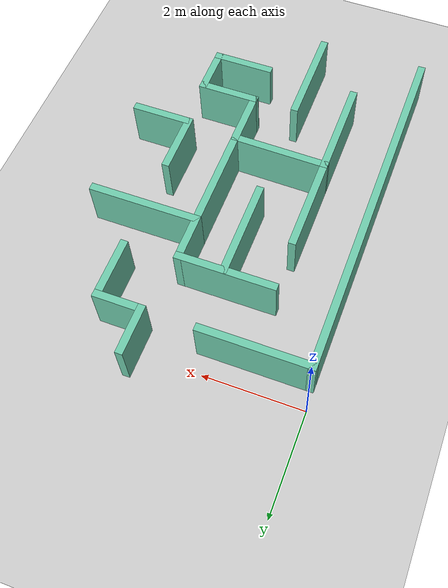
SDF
<sdf version="1.7">
 <world name="default">
  <model name="ground_plane">
   <static>1</static>
   <link name="link">
    <collision name="collision">
     <geometry><plane><normal>0 0 1</normal><size>100 100</size></plane></geometry>
     <surface><friction><ode><mu>100</mu><mu2>50</mu2></ode></friction></surface>
    </collision>
    <visual name="visual">
     <cast_shadows>0</cast_shadows>
     <geometry><plane><normal>0 0 1</normal><size>100 100</size></plane></geometry>
     <material>
      <script><uri>file://media/materials/scripts/gazebo.material</uri><name>Gazebo/Grey</name></script>
     </material>
    </visual>
   </link>
  </model>
  <model name="maze">
   <link name="Wall_196">
    <pose>0.425 -5.05 0 0 -0 3.14159</pose>
    <visual name="Wall_196_Visual">
     <pose>0 0 0.5 0 -0 0</pose>
     <geometry><box><size>7.25 0.15 1</size></box></geometry>
     <material>
      <script><uri>file://media/materials/scripts/gazebo.material</uri><name>Gazebo/Grey</name></script>
      <ambient>0.435294 0.796078 0.67451 1</ambient>
      <shader type="pixel"/>
     </material>
     <meta><layer>0</layer></meta>
    </visual>
    <collision name="Wall_196_Collision">
     <pose>0 0 0.5 0 -0 0</pose>
     <geometry><box><size>7.25 0.15 1</size></box></geometry>
     <surface>
      <friction>
       <ode><mu>1</mu><mu2>1</mu2><fdir1>0 0 0</fdir1><slip1>0</slip1><slip2>0</slip2></ode>
       <torsional>
        <coefficient>1</coefficient>
        <patch_radius>0</patch_radius>
        <surface_radius>0</surface_radius>
        <use_patch_radius>1</use_patch_radius>
        <ode><slip>0</slip></ode>
       </torsional>
      </friction>
      <bounce><restitution_coefficient>0</restitution_coefficient><threshold>1e+06</threshold></bounce>
      <contact>
       <collide_without_contact>0</collide_without_contact>
       <collide_without_contact_bitmask>1</collide_without_contact_bitmask>
       <collide_bitmask>1</collide_bitmask>
       <ode>
        <soft_cfm>0</soft_cfm>
        <soft_erp>0.2</soft_erp>
        <kp>1e+13</kp>
        <kd>1</kd>
        <max_vel>0.01</max_vel>
        <min_depth>0</min_depth>
       </ode>
       <bullet>
        <split_impulse>1</split_impulse>
        <split_impulse_penetration_threshold>-0.01</split_impulse_penetration_threshold>
        <soft_cfm>0</soft_cfm>
        <soft_erp>0.2</soft_erp>
        <kp>1e+13</kp>
        <kd>1</kd>
       </bullet>
      </contact>
     </surface>
    </collision>
   </link>
   <link name="Wall_231">
    <pose>1.052 -0.469 0 0 0 -1.5708</pose>
    <visual name="Wall_231_Visual">
     <pose>0 0 0.5 0 -0 0</pose>
     <geometry><box><size>1.25 0.15 1</size></box></geometry>
     <material>
      <script><uri>file://media/materials/scripts/gazebo.material</uri><name>Gazebo/Grey</name></script>
      <ambient>0.435294 0.796078 0.67451 1</ambient>
      <shader type="pixel"/>
     </material>
     <meta><layer>0</layer></meta>
    </visual>
    <collision name="Wall_231_Collision">
     <pose>0 0 0.5 0 -0 0</pose>
     <geometry><box><size>1.25 0.15 1</size></box></geometry>
     <surface>
      <friction>
       <ode><mu>1</mu><mu2>1</mu2><fdir1>0 0 0</fdir1><slip1>0</slip1><slip2>0</slip2></ode>
       <torsional>
        <coefficient>1</coefficient>
        <patch_radius>0</patch_radius>
        <surface_radius>0</surface_radius>
        <use_patch_radius>1</use_patch_radius>
        <ode><slip>0</slip></ode>
       </torsional>
      </friction>
      <bounce><restitution_coefficient>0</restitution_coefficient><threshold>1e+06</threshold></bounce>
      <contact>
       <collide_without_contact>0</collide_without_contact>
       <collide_without_contact_bitmask>1</collide_without_contact_bitmask>
       <collide_bitmask>1</collide_bitmask>
       <ode>
        <soft_cfm>0</soft_cfm>
        <soft_erp>0.2</soft_erp>
        <kp>1e+13</kp>
        <kd>1</kd>
        <max_vel>0.01</max_vel>
        <min_depth>0</min_depth>
       </ode>
       <bullet>
        <split_impulse>1</split_impulse>
        <split_impulse_penetration_threshold>-0.01</split_impulse_penetration_threshold>
        <soft_cfm>0</soft_cfm>
        <soft_erp>0.2</soft_erp>
        <kp>1e+13</kp>
        <kd>1</kd>
       </bullet>
      </contact>
     </surface>
    </collision>
   </link>
   <link name="Wall_232">
    <pose>0.502 -1.019 0 0 -0 3.14159</pose>
    <visual name="Wall_232_Visual">
     <pose>0 0 0.5 0 -0 0</pose>
     <geometry><box><size>1.25 0.15 1</size></box></geometry>
     <material>
      <script><uri>file://media/materials/scripts/gazebo.material</uri><name>Gazebo/Grey</name></script>
      <ambient>0.435294 0.796078 0.67451 1</ambient>
      <shader type="pixel"/>
     </material>
     <meta><layer>0</layer></meta>
    </visual>
    <collision name="Wall_232_Collision">
     <pose>0 0 0.5 0 -0 0</pose>
     <geometry><box><size>1.25 0.15 1</size></box></geometry>
     <surface>
      <friction>
       <ode><mu>1</mu><mu2>1</mu2><fdir1>0 0 0</fdir1><slip1>0</slip1><slip2>0</slip2></ode>
       <torsional>
        <coefficient>1</coefficient>
        <patch_radius>0</patch_radius>
        <surface_radius>0</surface_radius>
        <use_patch_radius>1</use_patch_radius>
        <ode><slip>0</slip></ode>
       </torsional>
      </friction>
      <bounce><restitution_coefficient>0</restitution_coefficient><threshold>1e+06</threshold></bounce>
      <contact>
       <collide_without_contact>0</collide_without_contact>
       <collide_without_contact_bitmask>1</collide_without_contact_bitmask>
       <collide_bitmask>1</collide_bitmask>
       <ode>
        <soft_cfm>0</soft_cfm>
        <soft_erp>0.2</soft_erp>
        <kp>1e+13</kp>
        <kd>1</kd>
        <max_vel>0.01</max_vel>
        <min_depth>0</min_depth>
       </ode>
       <bullet>
        <split_impulse>1</split_impulse>
        <split_impulse_penetration_threshold>-0.01</split_impulse_penetration_threshold>
        <soft_cfm>0</soft_cfm>
        <soft_erp>0.2</soft_erp>
        <kp>1e+13</kp>
        <kd>1</kd>
       </bullet>
      </contact>
     </surface>
    </collision>
   </link>
   <link name="Wall_234">
    <pose>-1.056 -1.002 0 0 0 -1.5708</pose>
    <visual name="Wall_234_Visual">
     <pose>0 0 0.5 0 -0 0</pose>
     <geometry><box><size>2.25 0.15 1</size></box></geometry>
     <material>
      <script><uri>file://media/materials/scripts/gazebo.material</uri><name>Gazebo/Grey</name></script>
      <ambient>0.435294 0.796078 0.67451 1</ambient>
      <shader type="pixel"/>
     </material>
     <meta><layer>0</layer></meta>
    </visual>
    <collision name="Wall_234_Collision">
     <pose>0 0 0.5 0 -0 0</pose>
     <geometry><box><size>2.25 0.15 1</size></box></geometry>
     <surface>
      <friction>
       <ode><mu>1</mu><mu2>1</mu2><fdir1>0 0 0</fdir1><slip1>0</slip1><slip2>0</slip2></ode>
       <torsional>
        <coefficient>1</coefficient>
        <patch_radius>0</patch_radius>
        <surface_radius>0</surface_radius>
        <use_patch_radius>1</use_patch_radius>
        <ode><slip>0</slip></ode>
       </torsional>
      </friction>
      <bounce><restitution_coefficient>0</restitution_coefficient><threshold>1e+06</threshold></bounce>
      <contact>
       <collide_without_contact>0</collide_without_contact>
       <collide_without_contact_bitmask>1</collide_without_contact_bitmask>
       <collide_bitmask>1</collide_bitmask>
       <ode>
        <soft_cfm>0</soft_cfm>
        <soft_erp>0.2</soft_erp>
        <kp>1e+13</kp>
        <kd>1</kd>
        <max_vel>0.01</max_vel>
        <min_depth>0</min_depth>
       </ode>
       <bullet>
        <split_impulse>1</split_impulse>
        <split_impulse_penetration_threshold>-0.01</split_impulse_penetration_threshold>
        <soft_cfm>0</soft_cfm>
        <soft_erp>0.2</soft_erp>
        <kp>1e+13</kp>
        <kd>1</kd>
       </bullet>
      </contact>
     </surface>
    </collision>
   </link>
   <link name="Wall_235">
    <pose>0.494 -2.052 0 0 -0 0</pose>
    <visual name="Wall_235_Visual">
     <pose>0 0 0.5 0 -0 0</pose>
     <geometry><box><size>3.25 0.15 1</size></box></geometry>
     <material>
      <script><uri>file://media/materials/scripts/gazebo.material</uri><name>Gazebo/Grey</name></script>
      <ambient>0.435294 0.796078 0.67451 1</ambient>
      <shader type="pixel"/>
     </material>
     <meta><layer>0</layer></meta>
    </visual>
    <collision name="Wall_235_Collision">
     <pose>0 0 0.5 0 -0 0</pose>
     <geometry><box><size>3.25 0.15 1</size></box></geometry>
     <surface>
      <friction>
       <ode><mu>1</mu><mu2>1</mu2><fdir1>0 0 0</fdir1><slip1>0</slip1><slip2>0</slip2></ode>
       <torsional>
        <coefficient>1</coefficient>
        <patch_radius>0</patch_radius>
        <surface_radius>0</surface_radius>
        <use_patch_radius>1</use_patch_radius>
        <ode><slip>0</slip></ode>
       </torsional>
      </friction>
      <bounce><restitution_coefficient>0</restitution_coefficient><threshold>1e+06</threshold></bounce>
      <contact>
       <collide_without_contact>0</collide_without_contact>
       <collide_without_contact_bitmask>1</collide_without_contact_bitmask>
       <collide_bitmask>1</collide_bitmask>
       <ode>
        <soft_cfm>0</soft_cfm>
        <soft_erp>0.2</soft_erp>
        <kp>1e+13</kp>
        <kd>1</kd>
        <max_vel>0.01</max_vel>
        <min_depth>0</min_depth>
       </ode>
       <bullet>
        <split_impulse>1</split_impulse>
        <split_impulse_penetration_threshold>-0.01</split_impulse_penetration_threshold>
        <soft_cfm>0</soft_cfm>
        <soft_erp>0.2</soft_erp>
        <kp>1e+13</kp>
        <kd>1</kd>
       </bullet>
      </contact>
     </surface>
    </collision>
   </link>
   <link name="Wall_236">
    <pose>2.044 -1.502 0 0 -0 1.5708</pose>
    <visual name="Wall_236_Visual">
     <pose>0 0 0.5 0 -0 0</pose>
     <geometry><box><size>1.25 0.15 1</size></box></geometry>
     <material>
      <script><uri>file://media/materials/scripts/gazebo.material</uri><name>Gazebo/Grey</name></script>
      <ambient>0.435294 0.796078 0.67451 1</ambient>
      <shader type="pixel"/>
     </material>
     <meta><layer>0</layer></meta>
    </visual>
    <collision name="Wall_236_Collision">
     <pose>0 0 0.5 0 -0 0</pose>
     <geometry><box><size>1.25 0.15 1</size></box></geometry>
     <surface>
      <friction>
       <ode><mu>1</mu><mu2>1</mu2><fdir1>0 0 0</fdir1><slip1>0</slip1><slip2>0</slip2></ode>
       <torsional>
        <coefficient>1</coefficient>
        <patch_radius>0</patch_radius>
        <surface_radius>0</surface_radius>
        <use_patch_radius>1</use_patch_radius>
        <ode><slip>0</slip></ode>
       </torsional>
      </friction>
      <bounce><restitution_coefficient>0</restitution_coefficient><threshold>1e+06</threshold></bounce>
      <contact>
       <collide_without_contact>0</collide_without_contact>
       <collide_without_contact_bitmask>1</collide_without_contact_bitmask>
       <collide_bitmask>1</collide_bitmask>
       <ode>
        <soft_cfm>0</soft_cfm>
        <soft_erp>0.2</soft_erp>
        <kp>1e+13</kp>
        <kd>1</kd>
        <max_vel>0.01</max_vel>
        <min_depth>0</min_depth>
       </ode>
       <bullet>
        <split_impulse>1</split_impulse>
        <split_impulse_penetration_threshold>-0.01</split_impulse_penetration_threshold>
        <soft_cfm>0</soft_cfm>
        <soft_erp>0.2</soft_erp>
        <kp>1e+13</kp>
        <kd>1</kd>
       </bullet>
      </contact>
     </surface>
    </collision>
   </link>
   <link name="Wall_237">
    <pose>2.469 -0.952 0 0 -0 0</pose>
    <visual name="Wall_237_Visual">
     <pose>0 0 0.5 0 -0 0</pose>
     <geometry><box><size>1 0.15 1</size></box></geometry>
     <material>
      <script><uri>file://media/materials/scripts/gazebo.material</uri><name>Gazebo/Grey</name></script>
      <ambient>0.435294 0.796078 0.67451 1</ambient>
      <shader type="pixel"/>
     </material>
     <meta><layer>0</layer></meta>
    </visual>
    <collision name="Wall_237_Collision">
     <pose>0 0 0.5 0 -0 0</pose>
     <geometry><box><size>1 0.15 1</size></box></geometry>
     <surface>
      <friction>
       <ode><mu>1</mu><mu2>1</mu2><fdir1>0 0 0</fdir1><slip1>0</slip1><slip2>0</slip2></ode>
       <torsional>
        <coefficient>1</coefficient>
        <patch_radius>0</patch_radius>
        <surface_radius>0</surface_radius>
        <use_patch_radius>1</use_patch_radius>
        <ode><slip>0</slip></ode>
       </torsional>
      </friction>
      <bounce><restitution_coefficient>0</restitution_coefficient><threshold>1e+06</threshold></bounce>
      <contact>
       <collide_without_contact>0</collide_without_contact>
       <collide_without_contact_bitmask>1</collide_without_contact_bitmask>
       <collide_bitmask>1</collide_bitmask>
       <ode>
        <soft_cfm>0</soft_cfm>
        <soft_erp>0.2</soft_erp>
        <kp>1e+13</kp>
        <kd>1</kd>
        <max_vel>0.01</max_vel>
        <min_depth>0</min_depth>
       </ode>
       <bullet>
        <split_impulse>1</split_impulse>
        <split_impulse_penetration_threshold>-0.01</split_impulse_penetration_threshold>
        <soft_cfm>0</soft_cfm>
        <soft_erp>0.2</soft_erp>
        <kp>1e+13</kp>
        <kd>1</kd>
       </bullet>
      </contact>
     </surface>
    </collision>
   </link>
   <link name="Wall_238">
    <pose>2.894 -1.502 0 0 0 -1.5708</pose>
    <visual name="Wall_238_Visual">
     <pose>0 0 0.5 0 -0 0</pose>
     <geometry><box><size>1.25 0.15 1</size></box></geometry>
     <material>
      <script><uri>file://media/materials/scripts/gazebo.material</uri><name>Gazebo/Grey</name></script>
      <ambient>0.435294 0.796078 0.67451 1</ambient>
      <shader type="pixel"/>
     </material>
     <meta><layer>0</layer></meta>
    </visual>
    <collision name="Wall_238_Collision">
     <pose>0 0 0.5 0 -0 0</pose>
     <geometry><box><size>1.25 0.15 1</size></box></geometry>
     <surface>
      <friction>
       <ode><mu>1</mu><mu2>1</mu2><fdir1>0 0 0</fdir1><slip1>0</slip1><slip2>0</slip2></ode>
       <torsional>
        <coefficient>1</coefficient>
        <patch_radius>0</patch_radius>
        <surface_radius>0</surface_radius>
        <use_patch_radius>1</use_patch_radius>
        <ode><slip>0</slip></ode>
       </torsional>
      </friction>
      <bounce><restitution_coefficient>0</restitution_coefficient><threshold>1e+06</threshold></bounce>
      <contact>
       <collide_without_contact>0</collide_without_contact>
       <collide_without_contact_bitmask>1</collide_without_contact_bitmask>
       <collide_bitmask>1</collide_bitmask>
       <ode>
        <soft_cfm>0</soft_cfm>
        <soft_erp>0.2</soft_erp>
        <kp>1e+13</kp>
        <kd>1</kd>
        <max_vel>0.01</max_vel>
        <min_depth>0</min_depth>
       </ode>
       <bullet>
        <split_impulse>1</split_impulse>
        <split_impulse_penetration_threshold>-0.01</split_impulse_penetration_threshold>
        <soft_cfm>0</soft_cfm>
        <soft_erp>0.2</soft_erp>
        <kp>1e+13</kp>
        <kd>1</kd>
       </bullet>
      </contact>
     </surface>
    </collision>
   </link>
   <link name="Wall_241">
    <pose>3.033 -2.919 0 0 -0 3.14159</pose>
    <visual name="Wall_241_Visual">
     <pose>0 0 0.5 0 -0 0</pose>
     <geometry><box><size>2 0.15 1</size></box></geometry>
     <material>
      <script><uri>file://media/materials/scripts/gazebo.material</uri><name>Gazebo/Grey</name></script>
      <ambient>0.435294 0.796078 0.67451 1</ambient>
      <shader type="pixel"/>
     </material>
     <meta><layer>0</layer></meta>
    </visual>
    <collision name="Wall_241_Collision">
     <pose>0 0 0.5 0 -0 0</pose>
     <geometry><box><size>2 0.15 1</size></box></geometry>
     <surface>
      <friction>
       <ode><mu>1</mu><mu2>1</mu2><fdir1>0 0 0</fdir1><slip1>0</slip1><slip2>0</slip2></ode>
       <torsional>
        <coefficient>1</coefficient>
        <patch_radius>0</patch_radius>
        <surface_radius>0</surface_radius>
        <use_patch_radius>1</use_patch_radius>
        <ode><slip>0</slip></ode>
       </torsional>
      </friction>
      <bounce><restitution_coefficient>0</restitution_coefficient><threshold>1e+06</threshold></bounce>
      <contact>
       <collide_without_contact>0</collide_without_contact>
       <collide_without_contact_bitmask>1</collide_without_contact_bitmask>
       <collide_bitmask>1</collide_bitmask>
       <ode>
        <soft_cfm>0</soft_cfm>
        <soft_erp>0.2</soft_erp>
        <kp>1e+13</kp>
        <kd>1</kd>
        <max_vel>0.01</max_vel>
        <min_depth>0</min_depth>
       </ode>
       <bullet>
        <split_impulse>1</split_impulse>
        <split_impulse_penetration_threshold>-0.01</split_impulse_penetration_threshold>
        <soft_cfm>0</soft_cfm>
        <soft_erp>0.2</soft_erp>
        <kp>1e+13</kp>
        <kd>1</kd>
       </bullet>
      </contact>
     </surface>
    </collision>
   </link>
   <link name="Wall_243">
    <pose>-1.481 -2.052 0 0 -0 3.14159</pose>
    <visual name="Wall_243_Visual">
     <pose>0 0 0.5 0 -0 0</pose>
     <geometry><box><size>1 0.15 1</size></box></geometry>
     <material>
      <script><uri>file://media/materials/scripts/gazebo.material</uri><name>Gazebo/Grey</name></script>
      <ambient>0.435294 0.796078 0.67451 1</ambient>
      <shader type="pixel"/>
     </material>
     <meta><layer>0</layer></meta>
    </visual>
    <collision name="Wall_243_Collision">
     <pose>0 0 0.5 0 -0 0</pose>
     <geometry><box><size>1 0.15 1</size></box></geometry>
     <surface>
      <friction>
       <ode><mu>1</mu><mu2>1</mu2><fdir1>0 0 0</fdir1><slip1>0</slip1><slip2>0</slip2></ode>
       <torsional>
        <coefficient>1</coefficient>
        <patch_radius>0</patch_radius>
        <surface_radius>0</surface_radius>
        <use_patch_radius>1</use_patch_radius>
        <ode><slip>0</slip></ode>
       </torsional>
      </friction>
      <bounce><restitution_coefficient>0</restitution_coefficient><threshold>1e+06</threshold></bounce>
      <contact>
       <collide_without_contact>0</collide_without_contact>
       <collide_without_contact_bitmask>1</collide_without_contact_bitmask>
       <collide_bitmask>1</collide_bitmask>
       <ode>
        <soft_cfm>0</soft_cfm>
        <soft_erp>0.2</soft_erp>
        <kp>1e+13</kp>
        <kd>1</kd>
        <max_vel>0.01</max_vel>
        <min_depth>0</min_depth>
       </ode>
       <bullet>
        <split_impulse>1</split_impulse>
        <split_impulse_penetration_threshold>-0.01</split_impulse_penetration_threshold>
        <soft_cfm>0</soft_cfm>
        <soft_erp>0.2</soft_erp>
        <kp>1e+13</kp>
        <kd>1</kd>
       </bullet>
      </contact>
     </surface>
    </collision>
   </link>
   <link name="Wall_244">
    <pose>-1.906 -2.977 0 0 0 -1.5708</pose>
    <visual name="Wall_244_Visual">
     <pose>0 0 0.5 0 -0 0</pose>
     <geometry><box><size>2 0.15 1</size></box></geometry>
     <material>
      <script><uri>file://media/materials/scripts/gazebo.material</uri><name>Gazebo/Grey</name></script>
      <ambient>0.435294 0.796078 0.67451 1</ambient>
      <shader type="pixel"/>
     </material>
     <meta><layer>0</layer></meta>
    </visual>
    <collision name="Wall_244_Collision">
     <pose>0 0 0.5 0 -0 0</pose>
     <geometry><box><size>2 0.15 1</size></box></geometry>
     <surface>
      <friction>
       <ode><mu>1</mu><mu2>1</mu2><fdir1>0 0 0</fdir1><slip1>0</slip1><slip2>0</slip2></ode>
       <torsional>
        <coefficient>1</coefficient>
        <patch_radius>0</patch_radius>
        <surface_radius>0</surface_radius>
        <use_patch_radius>1</use_patch_radius>
        <ode><slip>0</slip></ode>
       </torsional>
      </friction>
      <bounce><restitution_coefficient>0</restitution_coefficient><threshold>1e+06</threshold></bounce>
      <contact>
       <collide_without_contact>0</collide_without_contact>
       <collide_without_contact_bitmask>1</collide_without_contact_bitmask>
       <collide_bitmask>1</collide_bitmask>
       <ode>
        <soft_cfm>0</soft_cfm>
        <soft_erp>0.2</soft_erp>
        <kp>1e+13</kp>
        <kd>1</kd>
        <max_vel>0.01</max_vel>
        <min_depth>0</min_depth>
       </ode>
       <bullet>
        <split_impulse>1</split_impulse>
        <split_impulse_penetration_threshold>-0.01</split_impulse_penetration_threshold>
        <soft_cfm>0</soft_cfm>
        <soft_erp>0.2</soft_erp>
        <kp>1e+13</kp>
        <kd>1</kd>
       </bullet>
      </contact>
     </surface>
    </collision>
   </link>
   <link name="Wall_246">
    <pose>-0.966 -2.933 0 0 -0 3.14159</pose>
    <visual name="Wall_246_Visual">
     <pose>0 0 0.5 0 -0 0</pose>
     <geometry><box><size>2 0.15 1</size></box></geometry>
     <material>
      <script><uri>file://media/materials/scripts/gazebo.material</uri><name>Gazebo/Grey</name></script>
      <ambient>0.435294 0.796078 0.67451 1</ambient>
      <shader type="pixel"/>
     </material>
     <meta><layer>0</layer></meta>
    </visual>
    <collision name="Wall_246_Collision">
     <pose>0 0 0.5 0 -0 0</pose>
     <geometry><box><size>2 0.15 1</size></box></geometry>
     <surface>
      <friction>
       <ode><mu>1</mu><mu2>1</mu2><fdir1>0 0 0</fdir1><slip1>0</slip1><slip2>0</slip2></ode>
       <torsional>
        <coefficient>1</coefficient>
        <patch_radius>0</patch_radius>
        <surface_radius>0</surface_radius>
        <use_patch_radius>1</use_patch_radius>
        <ode><slip>0</slip></ode>
       </torsional>
      </friction>
      <bounce><restitution_coefficient>0</restitution_coefficient><threshold>1e+06</threshold></bounce>
      <contact>
       <collide_without_contact>0</collide_without_contact>
       <collide_without_contact_bitmask>1</collide_without_contact_bitmask>
       <collide_bitmask>1</collide_bitmask>
       <ode>
        <soft_cfm>0</soft_cfm>
        <soft_erp>0.2</soft_erp>
        <kp>1e+13</kp>
        <kd>1</kd>
        <max_vel>0.01</max_vel>
        <min_depth>0</min_depth>
       </ode>
       <bullet>
        <split_impulse>1</split_impulse>
        <split_impulse_penetration_threshold>-0.01</split_impulse_penetration_threshold>
        <soft_cfm>0</soft_cfm>
        <soft_erp>0.2</soft_erp>
        <kp>1e+13</kp>
        <kd>1</kd>
       </bullet>
      </contact>
     </surface>
    </collision>
   </link>
   <link name="Wall_253">
    <pose>0.9745 -2.989 0 0 0 -1.58539</pose>
    <visual name="Wall_253_Visual">
     <pose>0 0 0.5 0 -0 0</pose>
     <geometry><box><size>2 0.15 1</size></box></geometry>
     <material>
      <script><uri>file://media/materials/scripts/gazebo.material</uri><name>Gazebo/Grey</name></script>
      <ambient>0.435294 0.796078 0.67451 1</ambient>
      <shader type="pixel"/>
     </material>
     <meta><layer>0</layer></meta>
    </visual>
    <collision name="Wall_253_Collision">
     <pose>0 0 0.5 0 -0 0</pose>
     <geometry><box><size>2 0.15 1</size></box></geometry>
     <surface>
      <friction>
       <ode><mu>1</mu><mu2>1</mu2><fdir1>0 0 0</fdir1><slip1>0</slip1><slip2>0</slip2></ode>
       <torsional>
        <coefficient>1</coefficient>
        <patch_radius>0</patch_radius>
        <surface_radius>0</surface_radius>
        <use_patch_radius>1</use_patch_radius>
        <ode><slip>0</slip></ode>
       </torsional>
      </friction>
      <bounce><restitution_coefficient>0</restitution_coefficient><threshold>1e+06</threshold></bounce>
      <contact>
       <collide_without_contact>0</collide_without_contact>
       <collide_without_contact_bitmask>1</collide_without_contact_bitmask>
       <collide_bitmask>1</collide_bitmask>
       <ode>
        <soft_cfm>0</soft_cfm>
        <soft_erp>0.2</soft_erp>
        <kp>1e+13</kp>
        <kd>1</kd>
        <max_vel>0.01</max_vel>
        <min_depth>0</min_depth>
       </ode>
       <bullet>
        <split_impulse>1</split_impulse>
        <split_impulse_penetration_threshold>-0.01</split_impulse_penetration_threshold>
        <soft_cfm>0</soft_cfm>
        <soft_erp>0.2</soft_erp>
        <kp>1e+13</kp>
        <kd>1</kd>
       </bullet>
      </contact>
     </surface>
    </collision>
   </link>
   <link name="Wall_254">
    <pose>0.036 -3.914 0 0 -0 3.14159</pose>
    <visual name="Wall_254_Visual">
     <pose>0 0 0.5 0 -0 0</pose>
     <geometry><box><size>2 0.15 1</size></box></geometry>
     <material>
      <script><uri>file://media/materials/scripts/gazebo.material</uri><name>Gazebo/Grey</name></script>
      <ambient>0.435294 0.796078 0.67451 1</ambient>
      <shader type="pixel"/>
     </material>
     <meta><layer>0</layer></meta>
    </visual>
    <collision name="Wall_254_Collision">
     <pose>0 0 0.5 0 -0 0</pose>
     <geometry><box><size>2 0.15 1</size></box></geometry>
     <surface>
      <friction>
       <ode><mu>1</mu><mu2>1</mu2><fdir1>0 0 0</fdir1><slip1>0</slip1><slip2>0</slip2></ode>
       <torsional>
        <coefficient>1</coefficient>
        <patch_radius>0</patch_radius>
        <surface_radius>0</surface_radius>
        <use_patch_radius>1</use_patch_radius>
        <ode><slip>0</slip></ode>
       </torsional>
      </friction>
      <bounce><restitution_coefficient>0</restitution_coefficient><threshold>1e+06</threshold></bounce>
      <contact>
       <collide_without_contact>0</collide_without_contact>
       <collide_without_contact_bitmask>1</collide_without_contact_bitmask>
       <collide_bitmask>1</collide_bitmask>
       <ode>
        <soft_cfm>0</soft_cfm>
        <soft_erp>0.2</soft_erp>
        <kp>1e+13</kp>
        <kd>1</kd>
        <max_vel>0.01</max_vel>
        <min_depth>0</min_depth>
       </ode>
       <bullet>
        <split_impulse>1</split_impulse>
        <split_impulse_penetration_threshold>-0.01</split_impulse_penetration_threshold>
        <soft_cfm>0</soft_cfm>
        <soft_erp>0.2</soft_erp>
        <kp>1e+13</kp>
        <kd>1</kd>
       </bullet>
      </contact>
     </surface>
    </collision>
   </link>
   <link name="Wall_256">
    <pose>1.8995 -3.914 0 0 -0 0</pose>
    <visual name="Wall_256_Visual">
     <pose>0 0 0.5 0 -0 0</pose>
     <geometry><box><size>2.02677 0.15 1</size></box></geometry>
     <material>
      <script><uri>file://media/materials/scripts/gazebo.material</uri><name>Gazebo/Grey</name></script>
      <ambient>0.435294 0.796078 0.67451 1</ambient>
      <shader type="pixel"/>
     </material>
     <meta><layer>0</layer></meta>
    </visual>
    <collision name="Wall_256_Collision">
     <pose>0 0 0.5 0 -0 0</pose>
     <geometry><box><size>2.02677 0.15 1</size></box></geometry>
     <surface>
      <friction>
       <ode><mu>1</mu><mu2>1</mu2><fdir1>0 0 0</fdir1><slip1>0</slip1><slip2>0</slip2></ode>
       <torsional>
        <coefficient>1</coefficient>
        <patch_radius>0</patch_radius>
        <surface_radius>0</surface_radius>
        <use_patch_radius>1</use_patch_radius>
        <ode><slip>0</slip></ode>
       </torsional>
      </friction>
      <bounce><restitution_coefficient>0</restitution_coefficient><threshold>1e+06</threshold></bounce>
      <contact>
       <collide_without_contact>0</collide_without_contact>
       <collide_without_contact_bitmask>1</collide_without_contact_bitmask>
       <collide_bitmask>1</collide_bitmask>
       <ode>
        <soft_cfm>0</soft_cfm>
        <soft_erp>0.2</soft_erp>
        <kp>1e+13</kp>
        <kd>1</kd>
        <max_vel>0.01</max_vel>
        <min_depth>0</min_depth>
       </ode>
       <bullet>
        <split_impulse>1</split_impulse>
        <split_impulse_penetration_threshold>-0.01</split_impulse_penetration_threshold>
        <soft_cfm>0</soft_cfm>
        <soft_erp>0.2</soft_erp>
        <kp>1e+13</kp>
        <kd>1</kd>
       </bullet>
      </contact>
     </surface>
    </collision>
   </link>
   <link name="Wall_260">
    <pose>-3.125 -4 0 0 -0 1.5708</pose>
    <visual name="Wall_260_Visual">
     <pose>0 0 0.5 0 -0 0</pose>
     <geometry><box><size>2.25 0.15 1</size></box></geometry>
     <material>
      <script><uri>file://media/materials/scripts/gazebo.material</uri><name>Gazebo/Grey</name></script>
      <ambient>0.435294 0.796078 0.67451 1</ambient>
      <shader type="pixel"/>
     </material>
     <meta><layer>0</layer></meta>
    </visual>
    <collision name="Wall_260_Collision">
     <pose>0 0 0.5 0 -0 0</pose>
     <geometry><box><size>2.25 0.15 1</size></box></geometry>
     <surface>
      <friction>
       <ode><mu>1</mu><mu2>1</mu2><fdir1>0 0 0</fdir1><slip1>0</slip1><slip2>0</slip2></ode>
       <torsional>
        <coefficient>1</coefficient>
        <patch_radius>0</patch_radius>
        <surface_radius>0</surface_radius>
        <use_patch_radius>1</use_patch_radius>
        <ode><slip>0</slip></ode>
       </torsional>
      </friction>
      <bounce><restitution_coefficient>0</restitution_coefficient><threshold>1e+06</threshold></bounce>
      <contact>
       <collide_without_contact>0</collide_without_contact>
       <collide_without_contact_bitmask>1</collide_without_contact_bitmask>
       <collide_bitmask>1</collide_bitmask>
       <ode>
        <soft_cfm>0</soft_cfm>
        <soft_erp>0.2</soft_erp>
        <kp>1e+13</kp>
        <kd>1</kd>
        <max_vel>0.01</max_vel>
        <min_depth>0</min_depth>
       </ode>
       <bullet>
        <split_impulse>1</split_impulse>
        <split_impulse_penetration_threshold>-0.01</split_impulse_penetration_threshold>
        <soft_cfm>0</soft_cfm>
        <soft_erp>0.2</soft_erp>
        <kp>1e+13</kp>
        <kd>1</kd>
       </bullet>
      </contact>
     </surface>
    </collision>
   </link>
   <link name="Wall_262">
    <pose>-3.125 -1.425 0 0 -0 1.5708</pose>
    <visual name="Wall_262_Visual">
     <pose>0 0 0.5 0 -0 0</pose>
     <geometry><box><size>1 0.15 1</size></box></geometry>
     <material>
      <script><uri>file://media/materials/scripts/gazebo.material</uri><name>Gazebo/Grey</name></script>
      <ambient>0.435294 0.796078 0.67451 1</ambient>
      <shader type="pixel"/>
     </material>
     <meta><layer>0</layer></meta>
    </visual>
    <collision name="Wall_262_Collision">
     <pose>0 0 0.5 0 -0 0</pose>
     <geometry><box><size>1 0.15 1</size></box></geometry>
     <surface>
      <friction>
       <ode><mu>1</mu><mu2>1</mu2><fdir1>0 0 0</fdir1><slip1>0</slip1><slip2>0</slip2></ode>
       <torsional>
        <coefficient>1</coefficient>
        <patch_radius>0</patch_radius>
        <surface_radius>0</surface_radius>
        <use_patch_radius>1</use_patch_radius>
        <ode><slip>0</slip></ode>
       </torsional>
      </friction>
      <bounce><restitution_coefficient>0</restitution_coefficient><threshold>1e+06</threshold></bounce>
      <contact>
       <collide_without_contact>0</collide_without_contact>
       <collide_without_contact_bitmask>1</collide_without_contact_bitmask>
       <collide_bitmask>1</collide_bitmask>
       <ode>
        <soft_cfm>0</soft_cfm>
        <soft_erp>0.2</soft_erp>
        <kp>1e+13</kp>
        <kd>1</kd>
        <max_vel>0.01</max_vel>
        <min_depth>0</min_depth>
       </ode>
       <bullet>
        <split_impulse>1</split_impulse>
        <split_impulse_penetration_threshold>-0.01</split_impulse_penetration_threshold>
        <soft_cfm>0</soft_cfm>
        <soft_erp>0.2</soft_erp>
        <kp>1e+13</kp>
        <kd>1</kd>
       </bullet>
      </contact>
     </surface>
    </collision>
   </link>
   <link name="Wall_263">
    <pose>-2.575 -1 0 0 -0 0</pose>
    <visual name="Wall_263_Visual">
     <pose>0 0 0.5 0 -0 0</pose>
     <geometry><box><size>1.25 0.15 1</size></box></geometry>
     <material>
      <script><uri>file://media/materials/scripts/gazebo.material</uri><name>Gazebo/Grey</name></script>
      <ambient>0.435294 0.796078 0.67451 1</ambient>
      <shader type="pixel"/>
     </material>
     <meta><layer>0</layer></meta>
    </visual>
    <collision name="Wall_263_Collision">
     <pose>0 0 0.5 0 -0 0</pose>
     <geometry><box><size>1.25 0.15 1</size></box></geometry>
     <surface>
      <friction>
       <ode><mu>1</mu><mu2>1</mu2><fdir1>0 0 0</fdir1><slip1>0</slip1><slip2>0</slip2></ode>
       <torsional>
        <coefficient>1</coefficient>
        <patch_radius>0</patch_radius>
        <surface_radius>0</surface_radius>
        <use_patch_radius>1</use_patch_radius>
        <ode><slip>0</slip></ode>
       </torsional>
      </friction>
      <bounce><restitution_coefficient>0</restitution_coefficient><threshold>1e+06</threshold></bounce>
      <contact>
       <collide_without_contact>0</collide_without_contact>
       <collide_without_contact_bitmask>1</collide_without_contact_bitmask>
       <collide_bitmask>1</collide_bitmask>
       <ode>
        <soft_cfm>0</soft_cfm>
        <soft_erp>0.2</soft_erp>
        <kp>1e+13</kp>
        <kd>1</kd>
        <max_vel>0.01</max_vel>
        <min_depth>0</min_depth>
       </ode>
       <bullet>
        <split_impulse>1</split_impulse>
        <split_impulse_penetration_threshold>-0.01</split_impulse_penetration_threshold>
        <soft_cfm>0</soft_cfm>
        <soft_erp>0.2</soft_erp>
        <kp>1e+13</kp>
        <kd>1</kd>
       </bullet>
      </contact>
     </surface>
    </collision>
   </link>
   <link name="Wall_265">
    <pose>-3.55 -1.85 0 0 -0 3.14159</pose>
    <visual name="Wall_265_Visual">
     <pose>0 0 0.5 0 -0 0</pose>
     <geometry><box><size>1 0.15 1</size></box></geometry>
     <material>
      <script><uri>file://media/materials/scripts/gazebo.material</uri><name>Gazebo/Grey</name></script>
      <ambient>0.435294 0.796078 0.67451 1</ambient>
      <shader type="pixel"/>
     </material>
     <meta><layer>0</layer></meta>
    </visual>
    <collision name="Wall_265_Collision">
     <pose>0 0 0.5 0 -0 0</pose>
     <geometry><box><size>1 0.15 1</size></box></geometry>
     <surface>
      <friction>
       <ode><mu>1</mu><mu2>1</mu2><fdir1>0 0 0</fdir1><slip1>0</slip1><slip2>0</slip2></ode>
       <torsional>
        <coefficient>1</coefficient>
        <patch_radius>0</patch_radius>
        <surface_radius>0</surface_radius>
        <use_patch_radius>1</use_patch_radius>
        <ode><slip>0</slip></ode>
       </torsional>
      </friction>
      <bounce><restitution_coefficient>0</restitution_coefficient><threshold>1e+06</threshold></bounce>
      <contact>
       <collide_without_contact>0</collide_without_contact>
       <collide_without_contact_bitmask>1</collide_without_contact_bitmask>
       <collide_bitmask>1</collide_bitmask>
       <ode>
        <soft_cfm>0</soft_cfm>
        <soft_erp>0.2</soft_erp>
        <kp>1e+13</kp>
        <kd>1</kd>
        <max_vel>0.01</max_vel>
        <min_depth>0</min_depth>
       </ode>
       <bullet>
        <split_impulse>1</split_impulse>
        <split_impulse_penetration_threshold>-0.01</split_impulse_penetration_threshold>
        <soft_cfm>0</soft_cfm>
        <soft_erp>0.2</soft_erp>
        <kp>1e+13</kp>
        <kd>1</kd>
       </bullet>
      </contact>
     </surface>
    </collision>
   </link>
   <static>1</static>
   <pose>5.11912 -3.57981 0 0 -0 -1.57214</pose>
  </model>
 </world>
</sdf>
